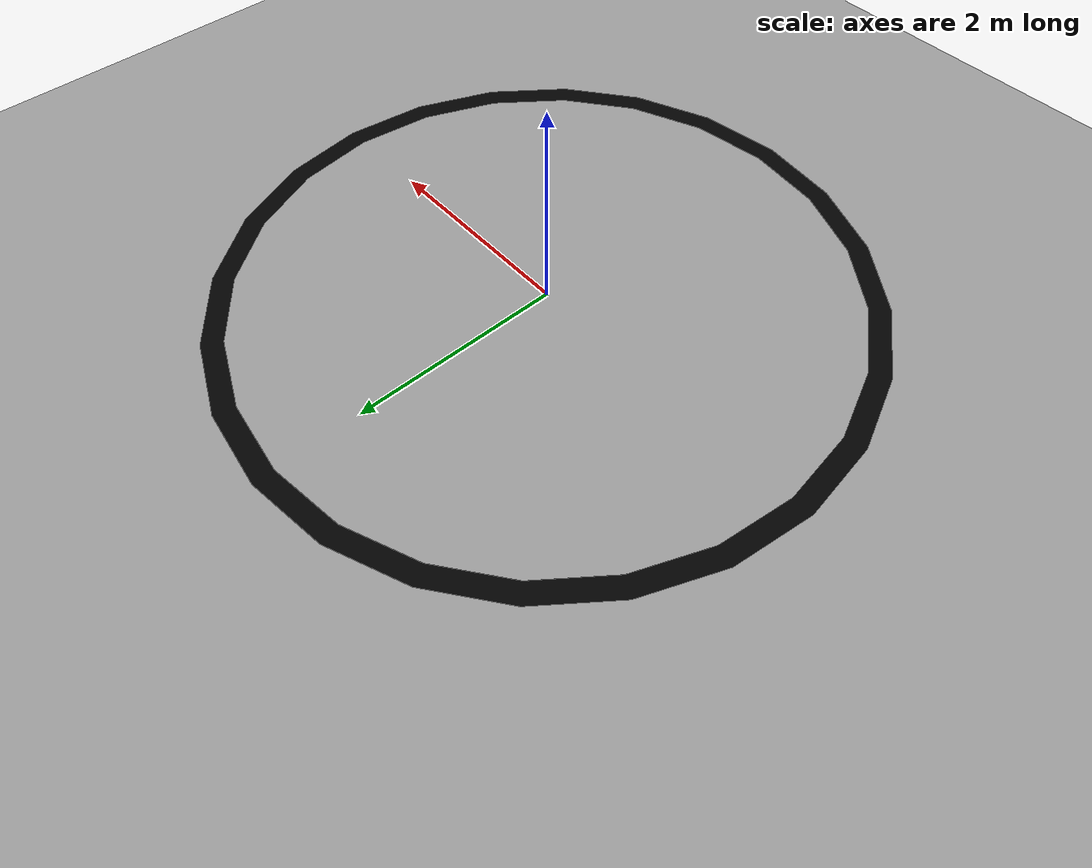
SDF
<?xml version="1.0"?>
<sdf version="1.7">
  <world name="circular_flat_black_track_world">

    <!-- Light -->
    <light name="sun" type="directional">
      <cast_shadows>1</cast_shadows>
      <pose>0 0 10 0 0 0</pose>
      <diffuse>0.8 0.8 0.8 1</diffuse>
      <specular>0.2 0.2 0.2 1</specular>
      <attenuation>
        <range>1000</range>
        <constant>0.9</constant>
        <linear>0.01</linear>
        <quadratic>0.001</quadratic>
      </attenuation>
      <direction>-0.5 0.1 -0.9</direction>
    </light>

    <!-- Ground plane -->
    <model name="ground_plane">
      <static>1</static>
      <link name="link">
        <collision name="collision">
          <geometry>
            <plane>
              <normal>0 0 1</normal>
              <size>100 100</size>
            </plane>
          </geometry>
        </collision>
        <visual name="visual">
          <geometry>
            <plane>
              <normal>0 0 1</normal>
              <size>100 100</size>
            </plane>
          </geometry>
          <material>
            <ambient>0.6 0.6 0.6 1</ambient>
            <diffuse>0.6 0.6 0.6 1</diffuse>
          </material>
        </visual>
      </link>
    </model>

    <!-- Flat black circular track -->
    <model name="flat_black_track">
      <static>1</static>
      <link name="link">
        <visual name="black_ring_visual">
          <pose>0 0 0.001 0 0 0</pose> <!-- very small height above ground -->
          <geometry>
            <cylinder>
              <radius>3.0</radius>     <!-- Outer radius -->
              <length>0.001</length>   <!-- Flat on ground -->
            </cylinder>
          </geometry>
          <material>
            <ambient>0 0 0 1</ambient>
            <diffuse>0 0 0 1</diffuse>
          </material>
        </visual>

        <!-- Inner cylinder to hollow out -->
        <visual name="inner_ring_visual">
          <pose>0 0 0.002 0 0 0</pose>
          <geometry>
            <cylinder>
              <radius>2.8</radius>     <!-- Inner radius -->
              <length>0.002</length>
            </cylinder>
          </geometry>
          <material>
            <ambient>0.6 0.6 0.6 1</ambient>
            <diffuse>0.6 0.6 0.6 1</diffuse>
          </material>
        </visual>
      </link>
    </model>

  </world>
</sdf>
